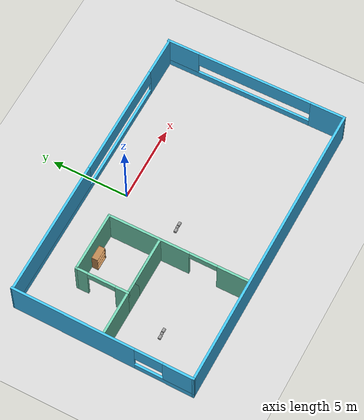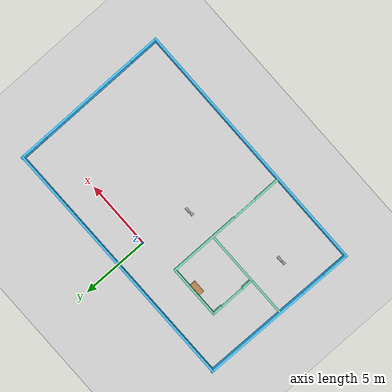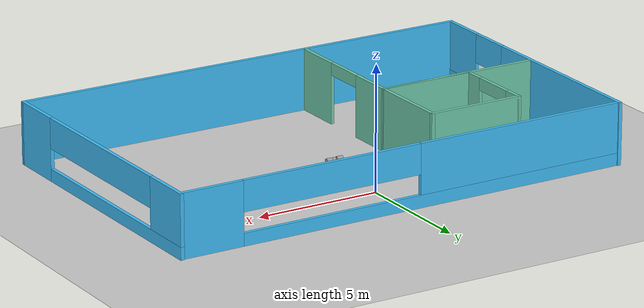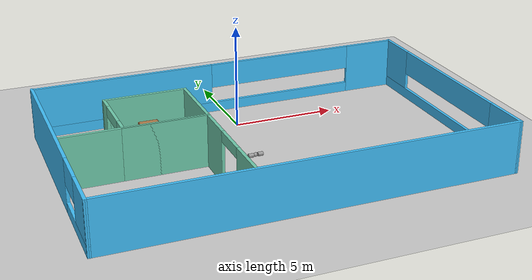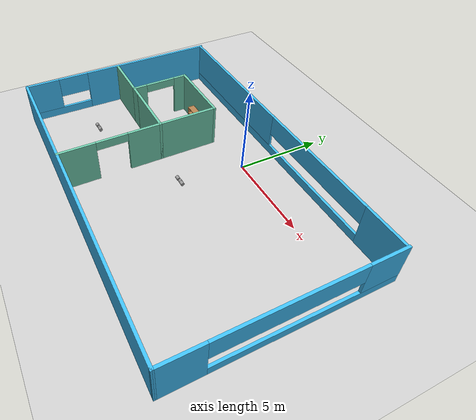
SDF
<sdf version="1.6">
 <world name="default">
  <plugin name="hello" filename="libhello.so"/>
  <light name="sun" type="directional">
   <pose>0 0 10 0 -0 0</pose>
   <diffuse>0.8 0.8 0.8 1</diffuse>
   <specular>0.2 0.2 0.2 1</specular>
   <attenuation>
    <range>1000</range>
    <constant>0.9</constant>
    <linear>0.01</linear>
    <quadratic>0.001</quadratic>
   </attenuation>
   <direction>-0.5 0.1 -0.9</direction>
  </light>
  <model name="ground_plane">
   <static>1</static>
   <link name="link">
    <collision name="collision">
     <geometry><plane><normal>0 0 1</normal><size>100 100</size></plane></geometry>
     <surface>
      <contact><collide_bitmask>65535</collide_bitmask></contact>
      <friction><ode><mu>100</mu><mu2>50</mu2></ode></friction>
     </surface>
    </collision>
    <visual name="visual">
     <cast_shadows>0</cast_shadows>
     <geometry><plane><normal>0 0 1</normal><size>100 100</size></plane></geometry>
     <material>
      <script><uri>file://media/materials/scripts/gazebo.material</uri><name>Gazebo/Grey</name></script>
     </material>
    </visual>
   </link>
  </model>
  <gravity>0 0 -9.8</gravity>
  <magnetic_field>6e-06 2.3e-05 -4.2e-05</magnetic_field>
  <atmosphere type="adiabatic"/>
  <physics name="default_physics" default="0" type="ode">
   <max_step_size>0.001</max_step_size>
   <real_time_factor>1</real_time_factor>
   <real_time_update_rate>1000</real_time_update_rate>
  </physics>
  <scene><ambient>0.4 0.4 0.4 1</ambient><background>0.7 0.7 0.7 1</background><shadows>1</shadows></scene>
  <audio><device>default</device></audio>
  <spherical_coordinates>
   <surface_model>EARTH_WGS84</surface_model>
   <latitude_deg>0</latitude_deg>
   <longitude_deg>0</longitude_deg>
   <elevation>0</elevation>
   <heading_deg>0</heading_deg>
  </spherical_coordinates>
  <model name="building">
   <pose>0.00125 -3.67579 0 0 -0 0</pose>
   <link name="Wall_0">
    <collision name="Wall_0_Collision">
     <geometry><box><size>19.2418 0.15 2.5</size></box></geometry>
     <pose>0 0 1.25 0 -0 0</pose>
    </collision>
    <visual name="Wall_0_Visual">
     <pose>0 0 1.25 0 -0 0</pose>
     <geometry><box><size>19.2418 0.15 2.5</size></box></geometry>
     <material>
      <script><uri>file://media/materials/scripts/gazebo.material</uri><name>Gazebo/Grey</name></script>
      <ambient>0.25098 0.74902 0.976471 1</ambient>
     </material>
     <meta><layer>0</layer></meta>
    </visual>
    <pose>0.000298 -5.87005 0 0 -0 -0.002676</pose>
   </link>
   <link name="Wall_1">
    <pose>9.52291 0 0 0 -0 1.57474</pose>
    <visual name="Wall_1_Visual_0">
     <pose>-4.83107 0 1.25 0 -0 0</pose>
     <geometry><box><size>2.27913 0.15 2.5</size></box></geometry>
     <material>
      <script><uri>file://media/materials/scripts/gazebo.material</uri><name>Gazebo/Grey</name></script>
      <ambient>0.25098 0.74902 0.976471 1</ambient>
     </material>
     <meta><layer>0</layer></meta>
    </visual>
    <collision name="Wall_1_Collision_0">
     <geometry><box><size>2.27913 0.15 2.5</size></box></geometry>
     <pose>-4.83107 0 1.25 0 -0 0</pose>
    </collision>
    <visual name="Wall_1_Visual_1">
     <pose>1.13957 0 0.25 0 -0 0</pose>
     <geometry><box><size>9.66215 0.15 0.5</size></box></geometry>
     <material>
      <script><uri>file://media/materials/scripts/gazebo.material</uri><name>Gazebo/Grey</name></script>
      <ambient>0.25098 0.74902 0.976471 1</ambient>
     </material>
     <meta><layer>0</layer></meta>
    </visual>
    <collision name="Wall_1_Collision_1">
     <geometry><box><size>9.66215 0.15 0.5</size></box></geometry>
     <pose>1.13957 0 0.25 0 -0 0</pose>
    </collision>
    <visual name="Wall_1_Visual_2">
     <pose>4.88957 0 1.5 0 -0 0</pose>
     <geometry><box><size>2.16215 0.15 2</size></box></geometry>
     <material>
      <script><uri>file://media/materials/scripts/gazebo.material</uri><name>Gazebo/Grey</name></script>
      <ambient>0.25098 0.74902 0.976471 1</ambient>
     </material>
     <meta><layer>0</layer></meta>
    </visual>
    <collision name="Wall_1_Collision_2">
     <geometry><box><size>2.16215 0.15 2</size></box></geometry>
     <pose>4.88957 0 1.5 0 -0 0</pose>
    </collision>
    <visual name="Wall_1_Visual_3">
     <pose>0.058493 0 1.9 0 -0 0</pose>
     <geometry><box><size>7.5 0.15 1.2</size></box></geometry>
     <material>
      <script><uri>file://media/materials/scripts/gazebo.material</uri><name>Gazebo/Grey</name></script>
      <ambient>0.25098 0.74902 0.976471 1</ambient>
     </material>
     <meta><layer>0</layer></meta>
    </visual>
    <collision name="Wall_1_Collision_3">
     <geometry><box><size>7.5 0.15 1.2</size></box></geometry>
     <pose>0.058493 0 1.9 0 -0 0</pose>
    </collision>
   </link>
   <link name="Wall_2">
    <pose>0.046822 5.82581 0 0 -0 -3.13913</pose>
    <visual name="Wall_2_Visual_0">
     <pose>-8.21872 0 1.25 0 -0 0</pose>
     <geometry><box><size>2.61826 0.15 2.5</size></box></geometry>
     <material>
      <script><uri>file://media/materials/scripts/gazebo.material</uri><name>Gazebo/Grey</name></script>
      <ambient>0.25098 0.74902 0.976471 1</ambient>
     </material>
     <meta><layer>0</layer></meta>
    </visual>
    <collision name="Wall_2_Collision_0">
     <geometry><box><size>2.61826 0.15 2.5</size></box></geometry>
     <pose>-8.21872 0 1.25 0 -0 0</pose>
    </collision>
    <visual name="Wall_2_Visual_1">
     <pose>1.30913 0 0.25 0 -0 0</pose>
     <geometry><box><size>16.4374 0.15 0.5</size></box></geometry>
     <material>
      <script><uri>file://media/materials/scripts/gazebo.material</uri><name>Gazebo/Grey</name></script>
      <ambient>0.25098 0.74902 0.976471 1</ambient>
     </material>
     <meta><layer>0</layer></meta>
    </visual>
    <collision name="Wall_2_Collision_1">
     <geometry><box><size>16.4374 0.15 0.5</size></box></geometry>
     <pose>1.30913 0 0.25 0 -0 0</pose>
    </collision>
    <visual name="Wall_2_Visual_2">
     <pose>5.05913 0 1.5 0 -0 0</pose>
     <geometry><box><size>8.93744 0.15 2</size></box></geometry>
     <material>
      <script><uri>file://media/materials/scripts/gazebo.material</uri><name>Gazebo/Grey</name></script>
      <ambient>0.25098 0.74902 0.976471 1</ambient>
     </material>
     <meta><layer>0</layer></meta>
    </visual>
    <collision name="Wall_2_Collision_2">
     <geometry><box><size>8.93744 0.15 2</size></box></geometry>
     <pose>5.05913 0 1.5 0 -0 0</pose>
    </collision>
    <visual name="Wall_2_Visual_3">
     <pose>-3.15959 0 1.9 0 -0 0</pose>
     <geometry><box><size>7.5 0.15 1.2</size></box></geometry>
     <material>
      <script><uri>file://media/materials/scripts/gazebo.material</uri><name>Gazebo/Grey</name></script>
      <ambient>0.25098 0.74902 0.976471 1</ambient>
     </material>
     <meta><layer>0</layer></meta>
    </visual>
    <collision name="Wall_2_Collision_3">
     <geometry><box><size>7.5 0.15 1.2</size></box></geometry>
     <pose>-3.15959 0 1.9 0 -0 0</pose>
    </collision>
   </link>
   <link name="Wall_3">
    <pose>-9.47579 0.002281 0 0 -0 -1.58273</pose>
    <visual name="Wall_3_Visual_0">
     <pose>-1.90879 0 1.25 0 -0 0</pose>
     <geometry><box><size>8.02683 0.15 2.5</size></box></geometry>
     <material>
      <script><uri>file://media/materials/scripts/gazebo.material</uri><name>Gazebo/Grey</name></script>
      <ambient>0.25098 0.74902 0.976471 1</ambient>
     </material>
     <meta><layer>0</layer></meta>
    </visual>
    <collision name="Wall_3_Collision_0">
     <geometry><box><size>8.02683 0.15 2.5</size></box></geometry>
     <pose>-1.90879 0 1.25 0 -0 0</pose>
    </collision>
    <visual name="Wall_3_Visual_1">
     <pose>4.01341 0 0.25 0 -0 0</pose>
     <geometry><box><size>3.81758 0.15 0.5</size></box></geometry>
     <material>
      <script><uri>file://media/materials/scripts/gazebo.material</uri><name>Gazebo/Grey</name></script>
      <ambient>0.25098 0.74902 0.976471 1</ambient>
     </material>
     <meta><layer>0</layer></meta>
    </visual>
    <collision name="Wall_3_Collision_1">
     <geometry><box><size>3.81758 0.15 0.5</size></box></geometry>
     <pose>4.01341 0 0.25 0 -0 0</pose>
    </collision>
    <visual name="Wall_3_Visual_2">
     <pose>4.91341 0 1.5 0 -0 0</pose>
     <geometry><box><size>2.01758 0.15 2</size></box></geometry>
     <material>
      <script><uri>file://media/materials/scripts/gazebo.material</uri><name>Gazebo/Grey</name></script>
      <ambient>0.25098 0.74902 0.976471 1</ambient>
     </material>
     <meta><layer>0</layer></meta>
    </visual>
    <collision name="Wall_3_Collision_2">
     <geometry><box><size>2.01758 0.15 2</size></box></geometry>
     <pose>4.91341 0 1.5 0 -0 0</pose>
    </collision>
    <visual name="Wall_3_Visual_3">
     <pose>3.00462 0 1.9 0 -0 0</pose>
     <geometry><box><size>1.8 0.15 1.2</size></box></geometry>
     <material>
      <script><uri>file://media/materials/scripts/gazebo.material</uri><name>Gazebo/Grey</name></script>
      <ambient>0.25098 0.74902 0.976471 1</ambient>
     </material>
     <meta><layer>0</layer></meta>
    </visual>
    <collision name="Wall_3_Collision_3">
     <geometry><box><size>1.8 0.15 1.2</size></box></geometry>
     <pose>3.00462 0 1.9 0 -0 0</pose>
    </collision>
   </link>
   <link name="Wall_5">
    <pose>-2.75308 -1.29907 0 0 -0 1.5708</pose>
    <visual name="Wall_5_Visual_0">
     <pose>-3.56363 0 1.25 0 -0 0</pose>
     <geometry><box><size>2.12274 0.15 2.5</size></box></geometry>
     <material>
      <script><uri>file://media/materials/scripts/gazebo.material</uri><name>Gazebo/Grey</name></script>
      <ambient>0.435294 0.796078 0.67451 1</ambient>
     </material>
     <meta><layer>0</layer></meta>
    </visual>
    <collision name="Wall_5_Collision_0">
     <geometry><box><size>2.12274 0.15 2.5</size></box></geometry>
     <pose>-3.56363 0 1.25 0 -0 0</pose>
    </collision>
    <visual name="Wall_5_Visual_1">
     <pose>1.96137 0 1.25 0 -0 0</pose>
     <geometry><box><size>5.32726 0.15 2.5</size></box></geometry>
     <material>
      <script><uri>file://media/materials/scripts/gazebo.material</uri><name>Gazebo/Grey</name></script>
      <ambient>0.435294 0.796078 0.67451 1</ambient>
     </material>
     <meta><layer>0</layer></meta>
    </visual>
    <collision name="Wall_5_Collision_1">
     <geometry><box><size>5.32726 0.15 2.5</size></box></geometry>
     <pose>1.96137 0 1.25 0 -0 0</pose>
    </collision>
    <visual name="Wall_5_Visual_2">
     <pose>-1.60226 0 2.25 0 -0 0</pose>
     <geometry><box><size>1.8 0.15 0.5</size></box></geometry>
     <material>
      <script><uri>file://media/materials/scripts/gazebo.material</uri><name>Gazebo/Grey</name></script>
      <ambient>0.435294 0.796078 0.67451 1</ambient>
     </material>
     <meta><layer>0</layer></meta>
    </visual>
    <collision name="Wall_5_Collision_2">
     <geometry><box><size>1.8 0.15 0.5</size></box></geometry>
     <pose>-1.60226 0 2.25 0 -0 0</pose>
    </collision>
   </link>
   <link name="Wall_6">
    <collision name="Wall_6_Collision">
     <geometry><box><size>4 0.15 2.5</size></box></geometry>
     <pose>0 0 1.25 0 -0 0</pose>
    </collision>
    <visual name="Wall_6_Visual">
     <pose>0 0 1.25 0 -0 0</pose>
     <geometry><box><size>4 0.15 2.5</size></box></geometry>
     <material>
      <script><uri>file://media/materials/scripts/gazebo.material</uri><name>Gazebo/Grey</name></script>
      <ambient>0.435294 0.796078 0.67451 1</ambient>
     </material>
     <meta><layer>0</layer></meta>
    </visual>
    <pose>-4.67808 3.25093 0 0 -0 3.14159</pose>
   </link>
   <link name="Wall_7">
    <pose>-6.60308 1.57593 0 0 -0 -1.5708</pose>
    <visual name="Wall_7_Visual_0">
     <pose>-1.34214 0 1.25 0 -0 0</pose>
     <geometry><box><size>0.815728 0.15 2.5</size></box></geometry>
     <material>
      <script><uri>file://media/materials/scripts/gazebo.material</uri><name>Gazebo/Grey</name></script>
      <ambient>0.435294 0.796078 0.67451 1</ambient>
     </material>
     <meta><layer>0</layer></meta>
    </visual>
    <collision name="Wall_7_Collision_0">
     <geometry><box><size>0.815728 0.15 2.5</size></box></geometry>
     <pose>-1.34214 0 1.25 0 -0 0</pose>
    </collision>
    <visual name="Wall_7_Visual_1">
     <pose>1.30786 0 1.25 0 -0 0</pose>
     <geometry><box><size>0.884272 0.15 2.5</size></box></geometry>
     <material>
      <script><uri>file://media/materials/scripts/gazebo.material</uri><name>Gazebo/Grey</name></script>
      <ambient>0.435294 0.796078 0.67451 1</ambient>
     </material>
     <meta><layer>0</layer></meta>
    </visual>
    <collision name="Wall_7_Collision_1">
     <geometry><box><size>0.884272 0.15 2.5</size></box></geometry>
     <pose>1.30786 0 1.25 0 -0 0</pose>
    </collision>
    <visual name="Wall_7_Visual_2">
     <pose>-0.034272 0 2.25 0 -0 0</pose>
     <geometry><box><size>1.8 0.15 0.5</size></box></geometry>
     <material>
      <script><uri>file://media/materials/scripts/gazebo.material</uri><name>Gazebo/Grey</name></script>
      <ambient>0.435294 0.796078 0.67451 1</ambient>
     </material>
     <meta><layer>0</layer></meta>
    </visual>
    <collision name="Wall_7_Collision_2">
     <geometry><box><size>1.8 0.15 0.5</size></box></geometry>
     <pose>-0.034272 0 2.25 0 -0 0</pose>
    </collision>
   </link>
   <link name="Wall_8">
    <collision name="Wall_8_Collision">
     <geometry><box><size>4 0.15 2.5</size></box></geometry>
     <pose>0 0 1.25 0 -0 0</pose>
    </collision>
    <visual name="Wall_8_Visual">
     <pose>0 0 1.25 0 -0 0</pose>
     <geometry><box><size>4 0.15 2.5</size></box></geometry>
     <material>
      <script><uri>file://media/materials/scripts/gazebo.material</uri><name>Gazebo/Grey</name></script>
      <ambient>0.435294 0.796078 0.67451 1</ambient>
     </material>
     <meta><layer>0</layer></meta>
    </visual>
    <pose>-4.67808 -0.099068 0 0 -0 0</pose>
   </link>
   <link name="Wall_9">
    <collision name="Wall_9_Collision">
     <geometry><box><size>6.75 0.15 2.5</size></box></geometry>
     <pose>0 0 1.25 0 -0 0</pose>
    </collision>
    <visual name="Wall_9_Visual">
     <pose>0 0 1.25 0 -0 0</pose>
     <geometry><box><size>6.75 0.15 2.5</size></box></geometry>
     <material>
      <script><uri>file://media/materials/scripts/gazebo.material</uri><name>Gazebo/Grey</name></script>
      <ambient>0.435294 0.796078 0.67451 1</ambient>
     </material>
     <meta><layer>0</layer></meta>
    </visual>
    <pose>-6.05308 -0.099068 0 0 -0 3.14159</pose>
   </link>
   <static>1</static>
  </model>
  <model name="worm">
   <link name="link_4">
    <inertial>
     <mass>1</mass>
     <inertia><ixx>0.145833</ixx><ixy>0</ixy><ixz>0</ixz><iyy>0.145833</iyy><iyz>0</iyz><izz>0.125</izz></inertia>
    </inertial>
    <pose>-0.235013 -0.013332 0.013333 0 1.5707 0</pose>
    <visual name="visual">
     <geometry><cylinder><radius>0.1</radius><length>0.25</length></cylinder></geometry>
     <material>
      <lighting>1</lighting>
      <script><uri>file://media/materials/scripts/gazebo.material</uri><name>Gazebo/Grey</name></script>
      <shader type="pixel"><normal_map>__default__</normal_map></shader>
      <ambient>0.3 0.3 0.3 1</ambient>
      <diffuse>0.7 0.7 0.7 1</diffuse>
      <specular>0.01 0.01 0.01 1</specular>
      <emissive>0 0 0 1</emissive>
     </material>
    </visual>
    <collision name="collision">
     <geometry><cylinder><radius>0.1</radius><length>0.25</length></cylinder></geometry>
     <surface>
      <friction>
       <ode><mu>1</mu><mu2>1</mu2><fdir1>0 0 0</fdir1><slip1>0</slip1><slip2>0</slip2></ode>
       <torsional>
        <coefficient>1</coefficient>
        <patch_radius>0</patch_radius>
        <surface_radius>0</surface_radius>
        <use_patch_radius>1</use_patch_radius>
        <ode><slip>0</slip></ode>
       </torsional>
      </friction>
      <bounce><restitution_coefficient>0</restitution_coefficient><threshold>1e+06</threshold></bounce>
      <contact>
       <collide_without_contact>0</collide_without_contact>
       <collide_without_contact_bitmask>1</collide_without_contact_bitmask>
       <collide_bitmask>1</collide_bitmask>
       <ode>
        <soft_cfm>0</soft_cfm>
        <soft_erp>0.2</soft_erp>
        <kp>1e+13</kp>
        <kd>1</kd>
        <max_vel>0.01</max_vel>
        <min_depth>0</min_depth>
       </ode>
       <bullet>
        <split_impulse>1</split_impulse>
        <split_impulse_penetration_threshold>-0.01</split_impulse_penetration_threshold>
        <soft_cfm>0</soft_cfm>
        <soft_erp>0.2</soft_erp>
        <kp>1e+13</kp>
        <kd>1</kd>
       </bullet>
      </contact>
     </surface>
    </collision>
   </link>
   <link name="link_4_clone_1">
    <inertial>
     <mass>1</mass>
     <inertia><ixx>0.145833</ixx><ixy>0</ixy><ixz>0</ixz><iyy>0.145833</iyy><iyz>0</iyz><izz>0.125</izz></inertia>
    </inertial>
    <pose>0.23001 0.006668 -0.006666 0 1.5707 0</pose>
    <visual name="visual">
     <geometry><cylinder><radius>0.1</radius><length>0.25</length></cylinder></geometry>
     <material>
      <lighting>1</lighting>
      <script><uri>file://media/materials/scripts/gazebo.material</uri><name>Gazebo/Grey</name></script>
      <shader type="pixel"><normal_map>__default__</normal_map></shader>
      <ambient>0.3 0.3 0.3 1</ambient>
      <diffuse>0.7 0.7 0.7 1</diffuse>
      <specular>0.01 0.01 0.01 1</specular>
      <emissive>0 0 0 1</emissive>
     </material>
    </visual>
    <collision name="collision">
     <geometry><cylinder><radius>0.1</radius><length>0.25</length></cylinder></geometry>
     <surface>
      <friction>
       <ode><mu>1</mu><mu2>1</mu2><fdir1>0 0 0</fdir1><slip1>0</slip1><slip2>0</slip2></ode>
       <torsional>
        <coefficient>1</coefficient>
        <patch_radius>0</patch_radius>
        <surface_radius>0</surface_radius>
        <use_patch_radius>1</use_patch_radius>
        <ode><slip>0</slip></ode>
       </torsional>
      </friction>
      <bounce><restitution_coefficient>0</restitution_coefficient><threshold>1e+06</threshold></bounce>
      <contact>
       <collide_without_contact>0</collide_without_contact>
       <collide_without_contact_bitmask>1</collide_without_contact_bitmask>
       <collide_bitmask>1</collide_bitmask>
       <ode>
        <soft_cfm>0</soft_cfm>
        <soft_erp>0.2</soft_erp>
        <kp>1e+13</kp>
        <kd>1</kd>
        <max_vel>0.01</max_vel>
        <min_depth>0</min_depth>
       </ode>
       <bullet>
        <split_impulse>1</split_impulse>
        <split_impulse_penetration_threshold>-0.01</split_impulse_penetration_threshold>
        <soft_cfm>0</soft_cfm>
        <soft_erp>0.2</soft_erp>
        <kp>1e+13</kp>
        <kd>1</kd>
       </bullet>
      </contact>
     </surface>
    </collision>
   </link>
   <link name="link_5_clone_0">
    <inertial>
     <mass>1</mass>
     <inertia><ixx>0.1</ixx><ixy>0</ixy><ixz>0</ixz><iyy>0.1</iyy><iyz>0</iyz><izz>0.1</izz></inertia>
    </inertial>
    <pose>0.005001 0.006668 -0.006666 0 -0 0</pose>
    <visual name="visual">
     <geometry><sphere><radius>0.1</radius></sphere></geometry>
     <material>
      <lighting>1</lighting>
      <script><uri>file://media/materials/scripts/gazebo.material</uri><name>Gazebo/Grey</name></script>
      <shader type="pixel"><normal_map>__default__</normal_map></shader>
      <ambient>0.3 0.3 0.3 1</ambient>
      <diffuse>0.7 0.7 0.7 1</diffuse>
      <specular>0.01 0.01 0.01 1</specular>
      <emissive>0 0 0 1</emissive>
     </material>
    </visual>
    <collision name="collision">
     <geometry><sphere><radius>0.1</radius></sphere></geometry>
     <surface>
      <friction>
       <ode><mu>1</mu><mu2>1</mu2><fdir1>0 0 0</fdir1><slip1>0</slip1><slip2>0</slip2></ode>
       <torsional>
        <coefficient>1</coefficient>
        <patch_radius>0</patch_radius>
        <surface_radius>0</surface_radius>
        <use_patch_radius>1</use_patch_radius>
        <ode><slip>0</slip></ode>
       </torsional>
      </friction>
      <bounce><restitution_coefficient>0</restitution_coefficient><threshold>1e+06</threshold></bounce>
      <contact>
       <collide_without_contact>0</collide_without_contact>
       <collide_without_contact_bitmask>1</collide_without_contact_bitmask>
       <collide_bitmask>1</collide_bitmask>
       <ode>
        <soft_cfm>0</soft_cfm>
        <soft_erp>0.2</soft_erp>
        <kp>1e+13</kp>
        <kd>1</kd>
        <max_vel>0.01</max_vel>
        <min_depth>0</min_depth>
       </ode>
       <bullet>
        <split_impulse>1</split_impulse>
        <split_impulse_penetration_threshold>-0.01</split_impulse_penetration_threshold>
        <soft_cfm>0</soft_cfm>
        <soft_erp>0.2</soft_erp>
        <kp>1e+13</kp>
        <kd>1</kd>
       </bullet>
      </contact>
     </surface>
    </collision>
   </link>
   <joint name="link_5_clone_0_JOINT_17" type="revolute">
    <parent>link_5_clone_0</parent>
    <child>link_4_clone_1</child>
    <axis>
     <xyz>1 0 0</xyz>
     <use_parent_model_frame>0</use_parent_model_frame>
     <limit>
      <lower>-1.79769e+308</lower>
      <upper>1.79769e+308</upper>
      <effort>-1</effort>
      <velocity>-1</velocity>
     </limit>
     <dynamics>
      <spring_reference>0</spring_reference>
      <spring_stiffness>0</spring_stiffness>
      <damping>0</damping>
     </dynamics>
    </axis>
    <physics>
     <ode><limit><cfm>0</cfm><erp>0.2</erp></limit><suspension><cfm>0</cfm><erp>0.2</erp></suspension></ode>
    </physics>
   </joint>
   <joint name="link_5_clone_0_JOINT_18" type="revolute">
    <parent>link_5_clone_0</parent>
    <child>link_4_clone_1</child>
    <axis>
     <xyz>0 1 0</xyz>
     <use_parent_model_frame>0</use_parent_model_frame>
     <limit>
      <lower>-1.79769e+308</lower>
      <upper>1.79769e+308</upper>
      <effort>-1</effort>
      <velocity>-1</velocity>
     </limit>
     <dynamics>
      <spring_reference>0</spring_reference>
      <spring_stiffness>0</spring_stiffness>
      <damping>0</damping>
     </dynamics>
    </axis>
    <physics>
     <ode><limit><cfm>0</cfm><erp>0.2</erp></limit><suspension><cfm>0</cfm><erp>0.2</erp></suspension></ode>
    </physics>
   </joint>
   <joint name="link_5_clone_0_JOINT_19" type="revolute">
    <parent>link_5_clone_0</parent>
    <child>link_4_clone_1</child>
    <axis>
     <xyz>0 0 1</xyz>
     <use_parent_model_frame>0</use_parent_model_frame>
     <limit>
      <lower>-1.79769e+308</lower>
      <upper>1.79769e+308</upper>
      <effort>-1</effort>
      <velocity>-1</velocity>
     </limit>
     <dynamics>
      <spring_reference>0</spring_reference>
      <spring_stiffness>0</spring_stiffness>
      <damping>0</damping>
     </dynamics>
    </axis>
    <physics>
     <ode><limit><cfm>0</cfm><erp>0.2</erp></limit><suspension><cfm>0</cfm><erp>0.2</erp></suspension></ode>
    </physics>
   </joint>
   <joint name="link_5_clone_0_JOINT_21" type="revolute">
    <parent>link_5_clone_0</parent>
    <child>link_4</child>
    <axis>
     <xyz>1 0 0</xyz>
     <use_parent_model_frame>0</use_parent_model_frame>
     <limit>
      <lower>-1.79769e+308</lower>
      <upper>1.79769e+308</upper>
      <effort>-1</effort>
      <velocity>-1</velocity>
     </limit>
     <dynamics>
      <spring_reference>0</spring_reference>
      <spring_stiffness>0</spring_stiffness>
      <damping>0</damping>
     </dynamics>
    </axis>
    <physics>
     <ode><limit><cfm>0</cfm><erp>0.2</erp></limit><suspension><cfm>0</cfm><erp>0.2</erp></suspension></ode>
    </physics>
   </joint>
   <joint name="link_5_clone_0_JOINT_22" type="revolute">
    <parent>link_5_clone_0</parent>
    <child>link_4</child>
    <axis>
     <xyz>0 1 0</xyz>
     <use_parent_model_frame>0</use_parent_model_frame>
     <limit>
      <lower>-1.79769e+308</lower>
      <upper>1.79769e+308</upper>
      <effort>-1</effort>
      <velocity>-1</velocity>
     </limit>
     <dynamics>
      <spring_reference>0</spring_reference>
      <spring_stiffness>0</spring_stiffness>
      <damping>0</damping>
     </dynamics>
    </axis>
    <physics>
     <ode><limit><cfm>0</cfm><erp>0.2</erp></limit><suspension><cfm>0</cfm><erp>0.2</erp></suspension></ode>
    </physics>
   </joint>
   <joint name="link_5_clone_0_JOINT_23" type="revolute">
    <parent>link_5_clone_0</parent>
    <child>link_4</child>
    <axis>
     <xyz>0 0 1</xyz>
     <use_parent_model_frame>0</use_parent_model_frame>
     <limit>
      <lower>-1.79769e+308</lower>
      <upper>1.79769e+308</upper>
      <effort>-1</effort>
      <velocity>-1</velocity>
     </limit>
     <dynamics>
      <spring_reference>0</spring_reference>
      <spring_stiffness>0</spring_stiffness>
      <damping>0</damping>
     </dynamics>
    </axis>
    <physics>
     <ode><limit><cfm>0</cfm><erp>0.2</erp></limit><suspension><cfm>0</cfm><erp>0.2</erp></suspension></ode>
    </physics>
   </joint>
   <static>0</static>
   <pose>-0.486257 -3.68884 0.102894 1.02714 0.014561 -0.012446</pose>
  </model>
  <model name="worm_clone">
   <link name="link_4">
    <inertial>
     <mass>1</mass>
     <inertia><ixx>0.145833</ixx><ixy>0</ixy><ixz>0</ixz><iyy>0.145833</iyy><iyz>0</iyz><izz>0.125</izz></inertia>
    </inertial>
    <pose>-0.235013 -0.013332 0.013333 0 1.5707 0</pose>
    <visual name="visual">
     <geometry><cylinder><radius>0.1</radius><length>0.25</length></cylinder></geometry>
     <material>
      <lighting>1</lighting>
      <script><uri>file://media/materials/scripts/gazebo.material</uri><name>Gazebo/Grey</name></script>
      <shader type="pixel"><normal_map>__default__</normal_map></shader>
      <ambient>0.3 0.3 0.3 1</ambient>
      <diffuse>0.7 0.7 0.7 1</diffuse>
      <specular>0.01 0.01 0.01 1</specular>
      <emissive>0 0 0 1</emissive>
     </material>
    </visual>
    <collision name="collision">
     <geometry><cylinder><radius>0.1</radius><length>0.25</length></cylinder></geometry>
     <surface>
      <friction>
       <ode><mu>1</mu><mu2>1</mu2><fdir1>0 0 0</fdir1><slip1>0</slip1><slip2>0</slip2></ode>
       <torsional>
        <coefficient>1</coefficient>
        <patch_radius>0</patch_radius>
        <surface_radius>0</surface_radius>
        <use_patch_radius>1</use_patch_radius>
        <ode><slip>0</slip></ode>
       </torsional>
      </friction>
      <bounce><restitution_coefficient>0</restitution_coefficient><threshold>1e+06</threshold></bounce>
      <contact>
       <collide_without_contact>0</collide_without_contact>
       <collide_without_contact_bitmask>1</collide_without_contact_bitmask>
       <collide_bitmask>1</collide_bitmask>
       <ode>
        <soft_cfm>0</soft_cfm>
        <soft_erp>0.2</soft_erp>
        <kp>1e+13</kp>
        <kd>1</kd>
        <max_vel>0.01</max_vel>
        <min_depth>0</min_depth>
       </ode>
       <bullet>
        <split_impulse>1</split_impulse>
        <split_impulse_penetration_threshold>-0.01</split_impulse_penetration_threshold>
        <soft_cfm>0</soft_cfm>
        <soft_erp>0.2</soft_erp>
        <kp>1e+13</kp>
        <kd>1</kd>
       </bullet>
      </contact>
     </surface>
    </collision>
   </link>
   <link name="link_4_clone_1">
    <inertial>
     <mass>1</mass>
     <inertia><ixx>0.145833</ixx><ixy>0</ixy><ixz>0</ixz><iyy>0.145833</iyy><iyz>0</iyz><izz>0.125</izz></inertia>
    </inertial>
    <pose>0.23001 0.006668 -0.006666 0 1.5707 0</pose>
    <visual name="visual">
     <geometry><cylinder><radius>0.1</radius><length>0.25</length></cylinder></geometry>
     <material>
      <lighting>1</lighting>
      <script><uri>file://media/materials/scripts/gazebo.material</uri><name>Gazebo/Grey</name></script>
      <shader type="pixel"><normal_map>__default__</normal_map></shader>
      <ambient>0.3 0.3 0.3 1</ambient>
      <diffuse>0.7 0.7 0.7 1</diffuse>
      <specular>0.01 0.01 0.01 1</specular>
      <emissive>0 0 0 1</emissive>
     </material>
    </visual>
    <collision name="collision">
     <geometry><cylinder><radius>0.1</radius><length>0.25</length></cylinder></geometry>
     <surface>
      <friction>
       <ode><mu>1</mu><mu2>1</mu2><fdir1>0 0 0</fdir1><slip1>0</slip1><slip2>0</slip2></ode>
       <torsional>
        <coefficient>1</coefficient>
        <patch_radius>0</patch_radius>
        <surface_radius>0</surface_radius>
        <use_patch_radius>1</use_patch_radius>
        <ode><slip>0</slip></ode>
       </torsional>
      </friction>
      <bounce><restitution_coefficient>0</restitution_coefficient><threshold>1e+06</threshold></bounce>
      <contact>
       <collide_without_contact>0</collide_without_contact>
       <collide_without_contact_bitmask>1</collide_without_contact_bitmask>
       <collide_bitmask>1</collide_bitmask>
       <ode>
        <soft_cfm>0</soft_cfm>
        <soft_erp>0.2</soft_erp>
        <kp>1e+13</kp>
        <kd>1</kd>
        <max_vel>0.01</max_vel>
        <min_depth>0</min_depth>
       </ode>
       <bullet>
        <split_impulse>1</split_impulse>
        <split_impulse_penetration_threshold>-0.01</split_impulse_penetration_threshold>
        <soft_cfm>0</soft_cfm>
        <soft_erp>0.2</soft_erp>
        <kp>1e+13</kp>
        <kd>1</kd>
       </bullet>
      </contact>
     </surface>
    </collision>
   </link>
   <link name="link_5_clone_0">
    <inertial>
     <mass>1</mass>
     <inertia><ixx>0.1</ixx><ixy>0</ixy><ixz>0</ixz><iyy>0.1</iyy><iyz>0</iyz><izz>0.1</izz></inertia>
    </inertial>
    <pose>0.005001 0.006668 -0.006666 0 -0 0</pose>
    <visual name="visual">
     <geometry><sphere><radius>0.1</radius></sphere></geometry>
     <material>
      <lighting>1</lighting>
      <script><uri>file://media/materials/scripts/gazebo.material</uri><name>Gazebo/Grey</name></script>
      <shader type="pixel"><normal_map>__default__</normal_map></shader>
      <ambient>0.3 0.3 0.3 1</ambient>
      <diffuse>0.7 0.7 0.7 1</diffuse>
      <specular>0.01 0.01 0.01 1</specular>
      <emissive>0 0 0 1</emissive>
     </material>
    </visual>
    <collision name="collision">
     <geometry><sphere><radius>0.1</radius></sphere></geometry>
     <surface>
      <friction>
       <ode><mu>1</mu><mu2>1</mu2><fdir1>0 0 0</fdir1><slip1>0</slip1><slip2>0</slip2></ode>
       <torsional>
        <coefficient>1</coefficient>
        <patch_radius>0</patch_radius>
        <surface_radius>0</surface_radius>
        <use_patch_radius>1</use_patch_radius>
        <ode><slip>0</slip></ode>
       </torsional>
      </friction>
      <bounce><restitution_coefficient>0</restitution_coefficient><threshold>1e+06</threshold></bounce>
      <contact>
       <collide_without_contact>0</collide_without_contact>
       <collide_without_contact_bitmask>1</collide_without_contact_bitmask>
       <collide_bitmask>1</collide_bitmask>
       <ode>
        <soft_cfm>0</soft_cfm>
        <soft_erp>0.2</soft_erp>
        <kp>1e+13</kp>
        <kd>1</kd>
        <max_vel>0.01</max_vel>
        <min_depth>0</min_depth>
       </ode>
       <bullet>
        <split_impulse>1</split_impulse>
        <split_impulse_penetration_threshold>-0.01</split_impulse_penetration_threshold>
        <soft_cfm>0</soft_cfm>
        <soft_erp>0.2</soft_erp>
        <kp>1e+13</kp>
        <kd>1</kd>
       </bullet>
      </contact>
     </surface>
    </collision>
   </link>
   <joint name="link_5_clone_0_JOINT_17" type="revolute">
    <parent>link_5_clone_0</parent>
    <child>link_4_clone_1</child>
    <axis>
     <xyz>1 0 0</xyz>
     <use_parent_model_frame>0</use_parent_model_frame>
     <limit>
      <lower>-1.79769e+308</lower>
      <upper>1.79769e+308</upper>
      <effort>-1</effort>
      <velocity>-1</velocity>
     </limit>
     <dynamics>
      <spring_reference>0</spring_reference>
      <spring_stiffness>0</spring_stiffness>
      <damping>0</damping>
     </dynamics>
    </axis>
    <physics>
     <ode><limit><cfm>0</cfm><erp>0.2</erp></limit><suspension><cfm>0</cfm><erp>0.2</erp></suspension></ode>
    </physics>
   </joint>
   <joint name="link_5_clone_0_JOINT_18" type="revolute">
    <parent>link_5_clone_0</parent>
    <child>link_4_clone_1</child>
    <axis>
     <xyz>0 1 0</xyz>
     <use_parent_model_frame>0</use_parent_model_frame>
     <limit>
      <lower>-1.79769e+308</lower>
      <upper>1.79769e+308</upper>
      <effort>-1</effort>
      <velocity>-1</velocity>
     </limit>
     <dynamics>
      <spring_reference>0</spring_reference>
      <spring_stiffness>0</spring_stiffness>
      <damping>0</damping>
     </dynamics>
    </axis>
    <physics>
     <ode><limit><cfm>0</cfm><erp>0.2</erp></limit><suspension><cfm>0</cfm><erp>0.2</erp></suspension></ode>
    </physics>
   </joint>
   <joint name="link_5_clone_0_JOINT_19" type="revolute">
    <parent>link_5_clone_0</parent>
    <child>link_4_clone_1</child>
    <axis>
     <xyz>0 0 1</xyz>
     <use_parent_model_frame>0</use_parent_model_frame>
     <limit>
      <lower>-1.79769e+308</lower>
      <upper>1.79769e+308</upper>
      <effort>-1</effort>
      <velocity>-1</velocity>
     </limit>
     <dynamics>
      <spring_reference>0</spring_reference>
      <spring_stiffness>0</spring_stiffness>
      <damping>0</damping>
     </dynamics>
    </axis>
    <physics>
     <ode><limit><cfm>0</cfm><erp>0.2</erp></limit><suspension><cfm>0</cfm><erp>0.2</erp></suspension></ode>
    </physics>
   </joint>
   <joint name="link_5_clone_0_JOINT_21" type="revolute">
    <parent>link_5_clone_0</parent>
    <child>link_4</child>
    <axis>
     <xyz>1 0 0</xyz>
     <use_parent_model_frame>0</use_parent_model_frame>
     <limit>
      <lower>-1.79769e+308</lower>
      <upper>1.79769e+308</upper>
      <effort>-1</effort>
      <velocity>-1</velocity>
     </limit>
     <dynamics>
      <spring_reference>0</spring_reference>
      <spring_stiffness>0</spring_stiffness>
      <damping>0</damping>
     </dynamics>
    </axis>
    <physics>
     <ode><limit><cfm>0</cfm><erp>0.2</erp></limit><suspension><cfm>0</cfm><erp>0.2</erp></suspension></ode>
    </physics>
   </joint>
   <joint name="link_5_clone_0_JOINT_22" type="revolute">
    <parent>link_5_clone_0</parent>
    <child>link_4</child>
    <axis>
     <xyz>0 1 0</xyz>
     <use_parent_model_frame>0</use_parent_model_frame>
     <limit>
      <lower>-1.79769e+308</lower>
      <upper>1.79769e+308</upper>
      <effort>-1</effort>
      <velocity>-1</velocity>
     </limit>
     <dynamics>
      <spring_reference>0</spring_reference>
      <spring_stiffness>0</spring_stiffness>
      <damping>0</damping>
     </dynamics>
    </axis>
    <physics>
     <ode><limit><cfm>0</cfm><erp>0.2</erp></limit><suspension><cfm>0</cfm><erp>0.2</erp></suspension></ode>
    </physics>
   </joint>
   <joint name="link_5_clone_0_JOINT_23" type="revolute">
    <parent>link_5_clone_0</parent>
    <child>link_4</child>
    <axis>
     <xyz>0 0 1</xyz>
     <use_parent_model_frame>0</use_parent_model_frame>
     <limit>
      <lower>-1.79769e+308</lower>
      <upper>1.79769e+308</upper>
      <effort>-1</effort>
      <velocity>-1</velocity>
     </limit>
     <dynamics>
      <spring_reference>0</spring_reference>
      <spring_stiffness>0</spring_stiffness>
      <damping>0</damping>
     </dynamics>
    </axis>
    <physics>
     <ode><limit><cfm>0</cfm><erp>0.2</erp></limit><suspension><cfm>0</cfm><erp>0.2</erp></suspension></ode>
    </physics>
   </joint>
   <static>0</static>
   <pose>-6.99295 -6.13931 0.102493 0.505972 -0.021056 -0.012372</pose>
  </model>
  <model name="bookshelf">
   <static>1</static>
   <link name="link">
    <inertial><mass>1</mass></inertial>
    <collision name="back">
     <pose>0 0.005 0.6 0 -0 0</pose>
     <geometry><box><size>0.9 0.01 1.2</size></box></geometry>
    </collision>
    <visual name="visual1">
     <pose>0 0.005 0.6 0 -0 0</pose>
     <geometry><box><size>0.9 0.01 1.2</size></box></geometry>
     <material>
      <script><uri>file://media/materials/scripts/gazebo.material</uri><name>Gazebo/Wood</name></script>
     </material>
    </visual>
    <collision name="left_side">
     <pose>0.45 -0.195 0.6 0 -0 0</pose>
     <geometry><box><size>0.02 0.4 1.2</size></box></geometry>
    </collision>
    <visual name="visual2">
     <pose>0.45 -0.195 0.6 0 -0 0</pose>
     <geometry><box><size>0.02 0.4 1.2</size></box></geometry>
     <material>
      <script><uri>file://media/materials/scripts/gazebo.material</uri><name>Gazebo/Wood</name></script>
     </material>
    </visual>
    <collision name="right_side">
     <pose>-0.45 -0.195 0.6 0 -0 0</pose>
     <geometry><box><size>0.02 0.4 1.2</size></box></geometry>
    </collision>
    <visual name="visual3">
     <pose>-0.45 -0.195 0.6 0 -0 0</pose>
     <geometry><box><size>0.02 0.4 1.2</size></box></geometry>
     <material>
      <script><uri>file://media/materials/scripts/gazebo.material</uri><name>Gazebo/Wood</name></script>
     </material>
    </visual>
    <collision name="bottom">
     <pose>0 -0.195 0.03 0 -0 0</pose>
     <geometry><box><size>0.88 0.4 0.06</size></box></geometry>
    </collision>
    <visual name="visual4">
     <pose>0 -0.195 0.03 0 -0 0</pose>
     <geometry><box><size>0.88 0.4 0.06</size></box></geometry>
     <material>
      <script><uri>file://media/materials/scripts/gazebo.material</uri><name>Gazebo/Wood</name></script>
     </material>
    </visual>
    <collision name="top">
     <pose>0 -0.195 1.19 0 -0 0</pose>
     <geometry><box><size>0.88 0.4 0.02</size></box></geometry>
    </collision>
    <visual name="visual5">
     <pose>0 -0.195 1.19 0 -0 0</pose>
     <geometry><box><size>0.88 0.4 0.02</size></box></geometry>
     <material>
      <script><uri>file://media/materials/scripts/gazebo.material</uri><name>Gazebo/Wood</name></script>
     </material>
    </visual>
    <collision name="low_shelf">
     <pose>0 -0.195 0.43 0 -0 0</pose>
     <geometry><box><size>0.88 0.4 0.02</size></box></geometry>
    </collision>
    <visual name="visual6">
     <pose>0 -0.195 0.43 0 -0 0</pose>
     <geometry><box><size>0.88 0.4 0.02</size></box></geometry>
     <material>
      <script><uri>file://media/materials/scripts/gazebo.material</uri><name>Gazebo/Wood</name></script>
     </material>
    </visual>
    <collision name="high_shelf">
     <pose>0 -0.195 0.8 0 -0 0</pose>
     <geometry><box><size>0.88 0.4 0.02</size></box></geometry>
    </collision>
    <visual name="visual7">
     <pose>0 -0.195 0.8 0 -0 0</pose>
     <geometry><box><size>0.88 0.4 0.02</size></box></geometry>
     <material>
      <script><uri>file://media/materials/scripts/gazebo.material</uri><name>Gazebo/Wood</name></script>
     </material>
    </visual>
   </link>
   <pose>-4.63664 -0.518897 0 0 -0 0</pose>
  </model>
 </world>
</sdf>
